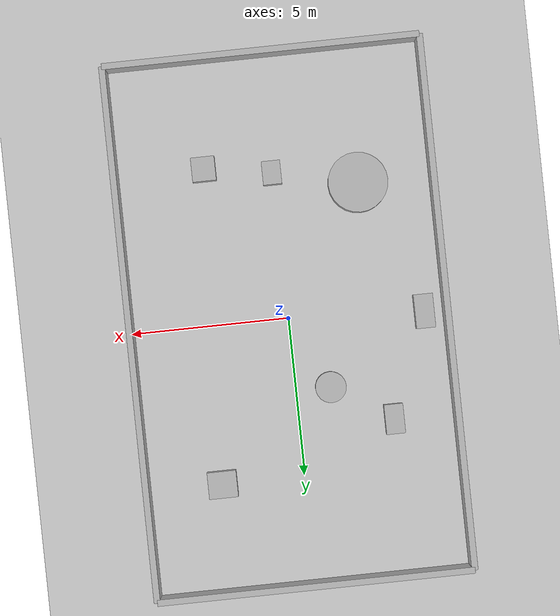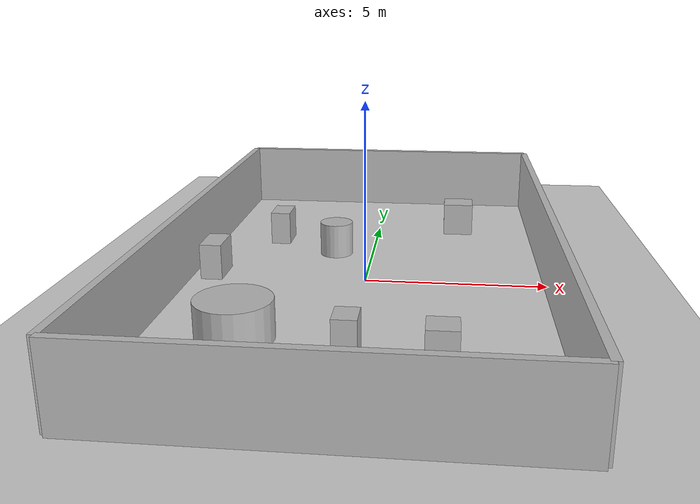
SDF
<?xml version="1.0"?>
<sdf version="1.6">
  <world name="env_61">

    <include><uri>model://ground_plane</uri></include>
    <include><uri>model://sun</uri></include>

    <!-- WALLS -->
    <model name="wall_north"><static>true</static><pose>0 8.442368480860274 1 0 0 0</pose>
      <link name="link"><collision name="collision">
        <geometry><box><size>10.000479892699405 0.2 2</size></box></geometry>
      </collision><visual name="visual">
        <geometry><box><size>10.000479892699405 0.2 2</size></box></geometry>
      </visual></link>
    </model>

    <model name="wall_south"><static>true</static><pose>0 -8.442368480860274 1 0 0 0</pose>
      <link name="link"><collision name="collision">
        <geometry><box><size>10.000479892699405 0.2 2</size></box></geometry>
      </collision><visual name="visual">
        <geometry><box><size>10.000479892699405 0.2 2</size></box></geometry>
      </visual></link>
    </model>

    <model name="wall_east"><static>true</static><pose>5.000239946349702 0 1 0 0 1.57</pose>
      <link name="link"><collision name="collision">
        <geometry><box><size>16.88473696172055 0.2 2</size></box></geometry>
      </collision><visual name="visual">
        <geometry><box><size>16.88473696172055 0.2 2</size></box></geometry>
      </visual></link>
    </model>

    <model name="wall_west"><static>true</static><pose>-5.000239946349702 0 1 0 0 1.57</pose>
      <link name="link"><collision name="collision">
        <geometry><box><size>16.88473696172055 0.2 2</size></box></geometry>
      </collision><visual name="visual">
        <geometry><box><size>16.88473696172055 0.2 2</size></box></geometry>
      </visual></link>
    </model>

    <!-- SENSOR -->

    <model name="lidar_sensor">
      <static>true</static>
      <pose>3.3616518457687548 1.4184335422810808 0.4 0 0 0</pose>
      <link name="link">
        <sensor name="lidar" type="ray">
          <pose>0 0 0 0 0 0</pose>
          <visualize>true</visualize>
          <always_on>true</always_on>
          <update_rate>10</update_rate>
          <ray>
            <scan><horizontal>
              <samples>240</samples>
              <resolution>1</resolution>
              <min_angle>-3.14159</min_angle>
              <max_angle>3.14159</max_angle>
            </horizontal></scan>
            <range><min>0.15</min><max>20.0</max><resolution>0.01</resolution></range>
          </ray>
          <plugin name="lidar_plugin" filename="liblidar_plugin.so"/>
        </sensor>
      </link>
    </model>

    <!-- OBSTACLES -->

    <model name="obstacle_0">
      <static>true</static>
      <pose>0.048346314364106746 -4.634855120587591 0.5 0 0 0</pose>
      <link name="link">
        <collision name="collision">
          <geometry><box><size>0.59 0.75 1.0</size></box></geometry>
        </collision>
        <visual name="visual">
          <geometry><box><size>0.59 0.75 1.0</size></box></geometry>
        </visual>
      </link>
    </model>

    <model name="obstacle_1">
      <static>true</static>
      <pose>-2.6365251825386737 -4.05069804436344 0.5 0 0 0</pose>
      <link name="link">
        <collision name="collision">
          <geometry><cylinder><radius>0.95</radius><length>1.0</length></cylinder></geometry>
        </collision>
        <visual name="visual">
          <geometry><cylinder><radius>0.95</radius><length>1.0</length></cylinder></geometry>
        </visual>
      </link>
    </model>

    <model name="obstacle_2">
      <static>true</static>
      <pose>2.6080679294789535 5.010641955024001 0.5 0 0 0</pose>
      <link name="link">
        <collision name="collision">
          <geometry><box><size>0.92 0.84 1.0</size></box></geometry>
        </collision>
        <visual name="visual">
          <geometry><box><size>0.92 0.84 1.0</size></box></geometry>
        </visual>
      </link>
    </model>

    <model name="obstacle_3">
      <static>true</static>
      <pose>-3.0131195743697643 3.50532391824475 0.5 0 0 0</pose>
      <link name="link">
        <collision name="collision">
          <geometry><box><size>0.6 0.94 1.0</size></box></geometry>
        </collision>
        <visual name="visual">
          <geometry><box><size>0.6 0.94 1.0</size></box></geometry>
        </visual>
      </link>
    </model>

    <model name="obstacle_4">
      <static>true</static>
      <pose>-4.302060857611969 0.21175580490735157 0.5 0 0 0</pose>
      <link name="link">
        <collision name="collision">
          <geometry><box><size>0.61 1.08 1.0</size></box></geometry>
        </collision>
        <visual name="visual">
          <geometry><box><size>0.61 1.08 1.0</size></box></geometry>
        </visual>
      </link>
    </model>

    <model name="obstacle_5">
      <static>true</static>
      <pose>-1.1144799943356354 2.299852691034065 0.5 0 0 0</pose>
      <link name="link">
        <collision name="collision">
          <geometry><cylinder><radius>0.49</radius><length>1.0</length></cylinder></geometry>
        </collision>
        <visual name="visual">
          <geometry><cylinder><radius>0.49</radius><length>1.0</length></cylinder></geometry>
        </visual>
      </link>
    </model>

    <model name="obstacle_6">
      <static>true</static>
      <pose>2.1786734298927133 -4.9704350995927165 0.5 0 0 0</pose>
      <link name="link">
        <collision name="collision">
          <geometry><box><size>0.75 0.77 1.0</size></box></geometry>
        </collision>
        <visual name="visual">
          <geometry><box><size>0.75 0.77 1.0</size></box></geometry>
        </visual>
      </link>
    </model>

  </world>
</sdf>
